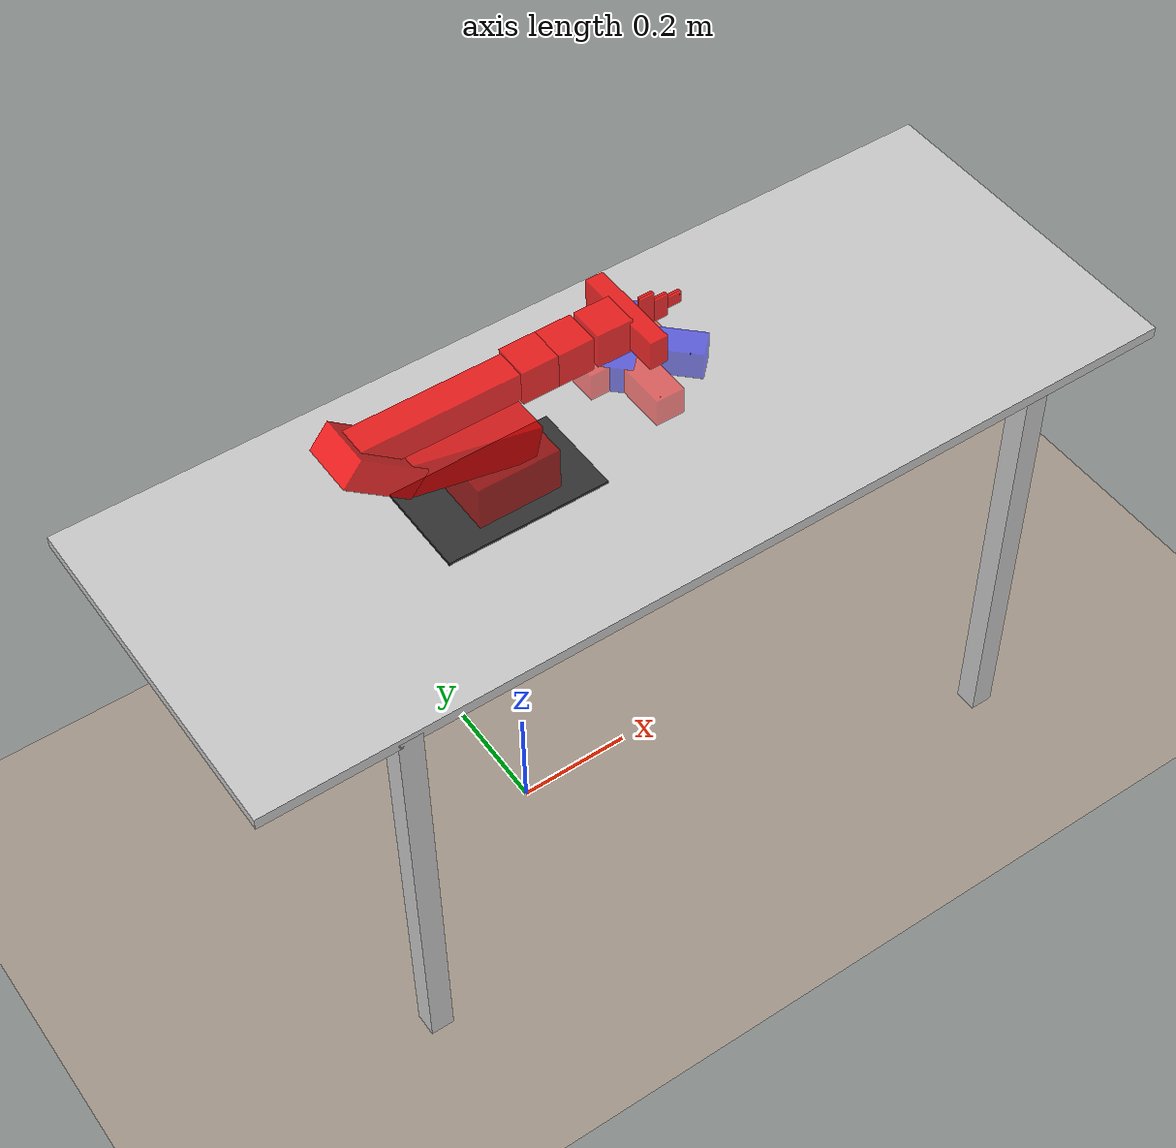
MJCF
<mujoco model="airbot_play">
  <asset>
    <texture name="grid" type="2d" builtin="checker" rgb1=".9 .8 .7" rgb2=".4 .4 .4" width="300" height="300" mark="edge" markrgb=".2 .3 .4"/>
    <material name="grid" texture="grid" texrepeat="2 2" texuniform="true" reflectance=".2"/>
  </asset>
  <visual>
    <global offwidth="1920" offheight="1080"/>
    <quality shadowsize="4096" offsamples="4"/>
    <headlight ambient="0.4 0.4 0.4"/>
    <scale com="0.05" camera="0.06" framelength="0.5" framewidth="0.02" forcewidth="0.005" contactwidth="0.01" contactheight="0.05"/>
  </visual>

  <worldbody>
    <light directional='false' diffuse='.3 .3 .3' specular='0.3 0.3 0.3' pos='0.3 -0.3 3'/>
    <light directional='false' diffuse='.3 .3 .3' specular='0.3 0.3 0.3' pos='-0.3 0.3 3'/>
    <light directional='false' diffuse='.3 .3 .3' specular='0.3 0.3 0.3' pos='0.6 0.3 3'/>
    <geom name="ground" type="plane" pos="0 0 0" size="3 3 0.1" material="grid" solimp=".9 .95 .001" solref='-10000 -1000'  contype="3" conaffinity="3" />
  </worldbody>

  <option timestep="0.00025" iterations="8" integrator="implicitfast" gravity="0 0 -9.81"/>
  <contact>
    <exclude body1='arm_base' body2='link2'/>
    <exclude body1='arm_base' body2='link1'/>
    <exclude body1='link1' body2='link2'/>
    <exclude body1='link2' body2='link3'/>
    <exclude body1='link3' body2='link4'/>
    <exclude body1='link4' body2='link5'/>
    <exclude body1='link5' body2='link6'/>
    <exclude body1='link6' body2='right'/>
    <exclude body1='link6' body2='left'/>
  </contact>

  <compiler angle="radian" inertiafromgeom="true"/>
  <size njmax="10000" nconmax="10000"/>

  <tendon>
    <fixed name='gripper_gear'>
      <joint joint='endleft'  coef='-12.5'/>
      <joint joint='endright' coef='12.5'/>
    </fixed>
  </tendon>
  <default>

    <geom contype="0" conaffinity="0" condim="4"/>
    <default class='arm'>
      <default class='joint1'>
        <joint axis='0 0 1' range="-3.14 2.09" actuatorfrcrange="-24 24" damping="0.2" frictionloss='15' />
        <position ctrlrange="-3.14 2.09"/>
      </default>

      <default class='joint2'>
        <joint axis='0 0 1' range="-2.96 0.17" actuatorfrcrange="-24 24" damping="0.2" frictionloss='15' />
        <position ctrlrange="-2.96 0.17" />
      </default>

      <default class='joint3'>
        <joint axis='0 0 1' range='-0.087 3.14' actuatorfrcrange="-24 24" damping="0.2" frictionloss='15' />
        <position ctrlrange='-0.087 3.14'/>
      </default>

      <default class='joint4'>
        <joint axis='0 0 1' range="1.569 1.571" damping="0.1" frictionloss='5' />
      </default>

      <default class='joint5'>
        <joint axis='0 0 1' range="-1.74 1.74" actuatorfrcrange="-8 8" damping="0.1" frictionloss='5' />
        <position ctrlrange="-1.74 1.74"/>
      </default>

      <default class='joint6'>
        <joint axis='0 0 1' range="-3.14 3.14" actuatorfrcrange="-8 8" damping="0.1" frictionloss='5' />
        <position ctrlrange="-3.14 3.14"/>
      </default>

      <default class='finger1'>
        <joint axis='0 1 0' range="-0.001 0.001" type='slide' damping="0.5" frictionloss="15"/>
      </default>

      <default class='finger2'>
        <joint axis='0 1 0' range="-0.001 0.001" type='slide' damping="0.5" frictionloss="15"/>
      </default>
    </default>
 </default>

  <worldbody>
    <!-- ======= AITBOT PLAY ======= -->
    <body name="arm_pose" pos="0 0 0.78" euler="0 0 0">
        <body name="arm_base">
            <geom type="box" pos="-0.02 0 0.005" size="0.0806 0.1375 0.0025" rgba="0.2 0.2 0.2 1" euler="0 0 1.5708" contype="0" conaffinity="1"/>
            <geom type="box" pos="-0.015 0 0.045" size="0.07 0.05 0.04" rgba="1 0 0 0.5" contype="0" conaffinity="1"/>
            <body name="link1" pos="0 0 0.1172">
            <inertial pos="7.9126e-05 -0.002527 -0.0041359" quat="0.696716 0.716558 0.0238919 -0.0236876" mass="0.54639" diaginertia="0.000346294 0.000325437 0.000286269"/>
            <joint name="joint1" class="joint1"/>
            <body name="link2" quat="0.135866 0.135867 -0.69393 0.693932">
                <inertial pos="0.22493 0.0047721 0.008023" quat="-0.210875 0.632473 -0.273056 0.693506" mass="0.64621" diaginertia="0.00516535 0.00505042 0.000418626"/>
                <joint name="joint2" class="joint2"/>
                <geom type="box" pos="0.08 0.015 0" euler="0 0 0.15" size="0.11 0.03 0.04" rgba="1 0 0 0.8" contype="0" conaffinity="1"/>
                <geom type="box" pos="0.235 0.015 0" euler="0 0 -0.3" size="0.065 0.025 0.045" rgba="1 0 0 0.8" contype="0" conaffinity="1"/>
                <body name="link3" pos="0.27009 0 0" quat="0.192144 0 0 -0.981367">
                <inertial pos="0.16813 -5.5576e-05 0.0031184" quat="0.511278 0.488423 0.489191 0.510617" mass="0.26829" diaginertia="0.0031527 0.0030951 0.000239403"/>
                <joint name="joint3" class="joint3"/>
                <geom type="box" pos="0.13 0 0" size="0.13 0.025 0.025" rgba="1 0 0 0.8" contype="0" conaffinity="1"/>
                <body name="link4" pos="0.29015 0 0" quat="-2.59734e-06 0.707105 2.59735e-06 0.707108">
                    <inertial pos="5.2436e-06 0.00040412 -0.03228" quat="0.999969 -0.000174762 -0.00792041 -6.98144e-05" mass="0.34876" diaginertia="0.000423574 0.000412 0.000126826"/>
                    <joint name="joint4" class="joint4" />
                    <geom type="box" pos="0 0 0" size="0.03 0.03 0.03"  rgba="1 0 0 0.8" contype="0" conaffinity="1"/>
                    <body name="link5" quat="0.707105 0.707108 0 0">
                    <inertial pos="8.3328e-06 0.026148 0.002525" quat="0.531568 0.4663 0.4663 0.531568" mass="0.36132" diaginertia="0.0004677 0.000432922 0.000178178"/>
                    <joint name="joint5" class="joint5"/>
                    <geom type="box" pos="0 0.06 0" size="0.03 0.03 0.03" rgba="1 0 0 0.8" contype="0" conaffinity="1"/>
                    <body name="link6" pos="0 0.23645 0" quat="0.499998 -0.5 0.5 0.500002">
                        <inertial pos="-0.0047053 7.3857e-05 -0.12293" mass="0.53855" diaginertia="5e-05 5e-05 3.85e-05"/>
                        <joint name="joint6" class="joint6"/>
                        <geom type="box" pos="0 0 -0.11" size="0.03 0.03 0.03" rgba="1 0 0 0.8" contype="0" conaffinity="1"/>
                        <geom name="fixed_gripper" type="box" pos="0 0 -0.07" size="0.025 0.08 0.015" rgba="1 0 0 0.8" contype="0" conaffinity="1"/>
                        <site name="endpoint" pos='0 0 0.025' euler="0 -1.5708 0" size='0.001' type='sphere'/>
                        <body name="right" pos="0 0 0" quat="9.38184e-07 0.707105 -9.38187e-07 0.707108">
                        <inertial pos="-0.048742 0.0096369 0.00044322" quat="0.757393 0.0415116 0.0313705 0.650883" mass="0.0626" diaginertia="2.79281e-05 1.90181e-05 1.21737e-05"/>
                        <joint name="endright" class='finger2'/>
                        <geom   condim="4" solimp="0.8 1 0.01" solref="0.01 1" friction="1 0.005 0.0001" type="box" pos="0.012 0.002 0.002" size="0.012 0.002 0.01" rgba="1 0 0 0.8" contype="0" conaffinity="1"/>
                        <geom   condim="4" solimp="0.8 1 0.01" solref="0.01 1" friction="1 0.005 0.0001" type="box" pos="-0.012 0.002 0.005" size="0.012 0.002 0.02" rgba="1 0 0 0.8" contype="0" conaffinity="1"/>
                        <geom   condim="4" solimp="0.8 1 0.01" solref="0.01 1" friction="1 0.005 0.0001" type="box" pos="-0.036 0.002 0.00" size="0.012 0.002 0.03" rgba="1 0 0 0.8" contype="0" conaffinity="1" name="right_finger"/>
                        </body>
                        <body name="left" pos="0 0 0" quat="9.38184e-07 0.707105 -9.38187e-07 0.707108">
                        <inertial pos="-0.049039 -0.0096764 0.00038868" quat="0.650491 0.0296695 0.0398251 0.757889" mass="0.061803" diaginertia="2.74809e-05 1.88104e-05 1.19127e-05"/>
                        <joint name="endleft" class='finger1'/>
                        <geom   condim="4" solimp="0.8 1 0.01" solref="0.01 1" friction="1 0.005 0.0001" type="box" pos="0.012 -0.002 0.002" size="0.012 0.002 0.01" rgba="1 0 0 0.8" contype="0" conaffinity="1"/>
                        <geom   condim="4" solimp="0.8 1 0.01" solref="0.01 1" friction="1 0.005 0.0001" type="box" pos="-0.012 -0.002 0.005" size="0.012 0.002 0.02" rgba="1 0 0 0.8" contype="0" conaffinity="1"/>
                        <geom   condim="4" solimp="0.8 1 0.01" solref="0.01 1" friction="1 0.005 0.0001" type="box" pos="-0.036 -0.002 0.00" size="0.012 0.002 0.03" rgba="1 0 0 0.8" contype="0" conaffinity="1" name="left_finger"/>
                        </body>
                    </body>
                    </body>
                </body>
                </body>
            </body>
            </body>
        </body>
      </body>

    <body name="table-a" pos="0.2 0 0">
      <!-- 桌面 -->
      <geom size="0.8 0.3 0.01" pos="0 0 0.77" type="box" rgba="0.8 0.8 0.8 1"
      condim="4" solimp="0.8 1 0.01" solref="0.01 1" friction="1 0.1 0.0001"
      contype="3" conaffinity="3" name="table-b" />
      <!-- 桌腿 -->
      <geom size="0.02 0.02 0.385" pos=" 0.56 -0.28 0.385" type="box" contype="0" conaffinity="0" rgba="0.8 0.8 0.8 1" />
      <geom size="0.02 0.02 0.385" pos=" 0.56  0.28 0.385" type="box" contype="0" conaffinity="0" rgba="0.8 0.8 0.8 1" />
      <geom size="0.02 0.02 0.385" pos="-0.56 -0.28 0.385" type="box" contype="0" conaffinity="0" rgba="0.8 0.8 0.8 1" />
      <geom size="0.02 0.02 0.385" pos="-0.56  0.28 0.385" type="box" contype="0" conaffinity="0" rgba="0.8 0.8 0.8 1" />
    </body>

    <body name="T_target" pos="0.29 0.12 0.805" euler="0 0 0.785398163">
        <inertial pos="0 -0.03 0" mass="0.5" diaginertia="0.001 0.001 0.001"/>
        <geom name="base_target" type="box" pos="0 0 0" size="0.075 0.025 0.025"
        rgba="0 0 1 0.5" contype="0" conaffinity="0" />
        <geom name="vertical_target" type="box" pos="0 -0.075 0" size="0.025 0.05 0.025"
        rgba="0 0 1 0.5" contype="0" conaffinity="0" />
        <site name="T_target_tail" pos='0.0 -0.1 0.0' euler="0 0 0" size='0.001' type='sphere'/>
    </body>

    <body name="T_block" pos="0.27 0.1 0.805" euler="0.0 0.0 0.0">
        <freejoint/>
        <inertial pos="0 -0.03 0" mass="0.5" diaginertia="0.0000260417 0.0000708333 0.0000708333"/>
        <geom name="base_block" type="box" solimp="0.8 1 0.01" solref="0.01 1" pos="0 0 0" size="0.075 0.025 0.025" condim="4"
        friction="1 0.1 0.0001" rgba="1 0 0 0.5" contype="1" conaffinity="0" />
        <geom name="vertical_block" type="box" solimp="0.8 1 0.01" solref="0.01 1" pos="0 -0.075 0" size="0.025 0.05 0.025" condim="4"
        friction="1 0.1 0.0001" rgba="1 0 0 0.5" contype="1" conaffinity="0" />
        <site name="T_tail" pos='0.0 -0.1 0.0' euler="0 0 0" size='0.001' type='sphere'/>
    </body>
  </worldbody>

  <equality>
    <joint joint1='endleft' joint2='endright' polycoef='0 -1 0 0 0 '/>
  </equality>

  <actuator>
    <position name="joint1" ctrllimited="true" ctrlrange="-3.14 2.09"  joint="joint1" kp="1000" user="1" forcelimited="true" forcerange="-300 300"/>
    <position name="joint2" ctrllimited="true" ctrlrange="-2.96 0.17"  joint="joint2" kp="1000" user="1" forcelimited="true" forcerange="-300 300"/>
    <position name="joint3" ctrllimited="true" ctrlrange="-0.087 3.14" joint="joint3" kp="1000" user="1" forcelimited="true" forcerange="-300 300"/>
    <position name="joint5" ctrllimited="true" ctrlrange="-1.74 1.74"  joint="joint5" kp="350" user="1" forcelimited="true" forcerange="-300 300"/>
    <position name="joint6" ctrllimited="true" ctrlrange="-3.14 3.14"  joint="joint6" kp="100" user="1" forcelimited="true" forcerange="-300 300"/>
  </actuator>

</mujoco>
